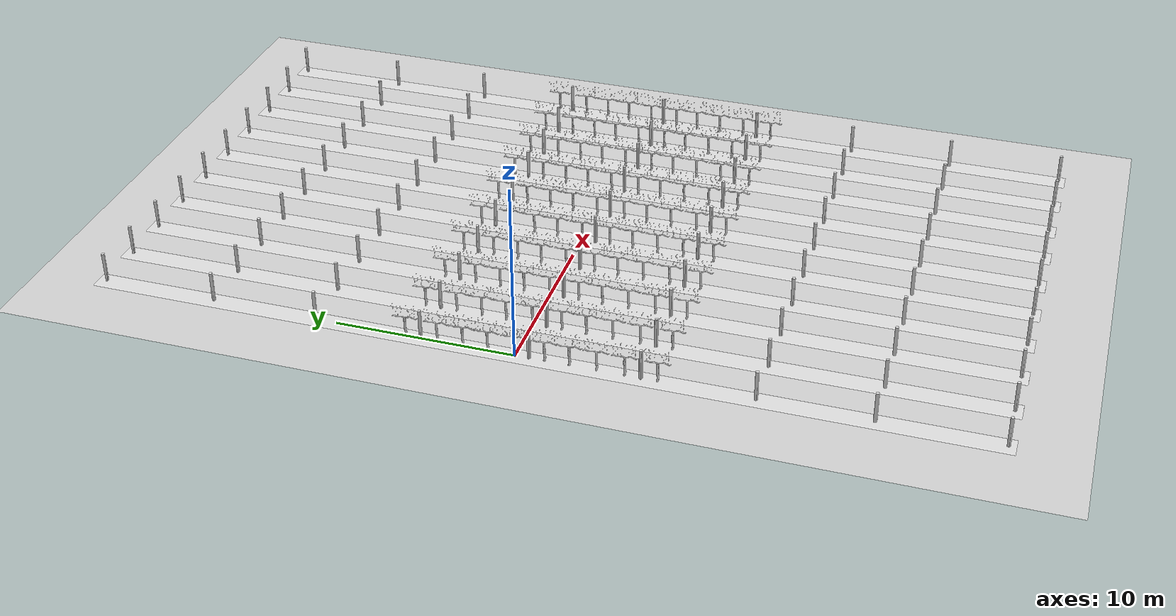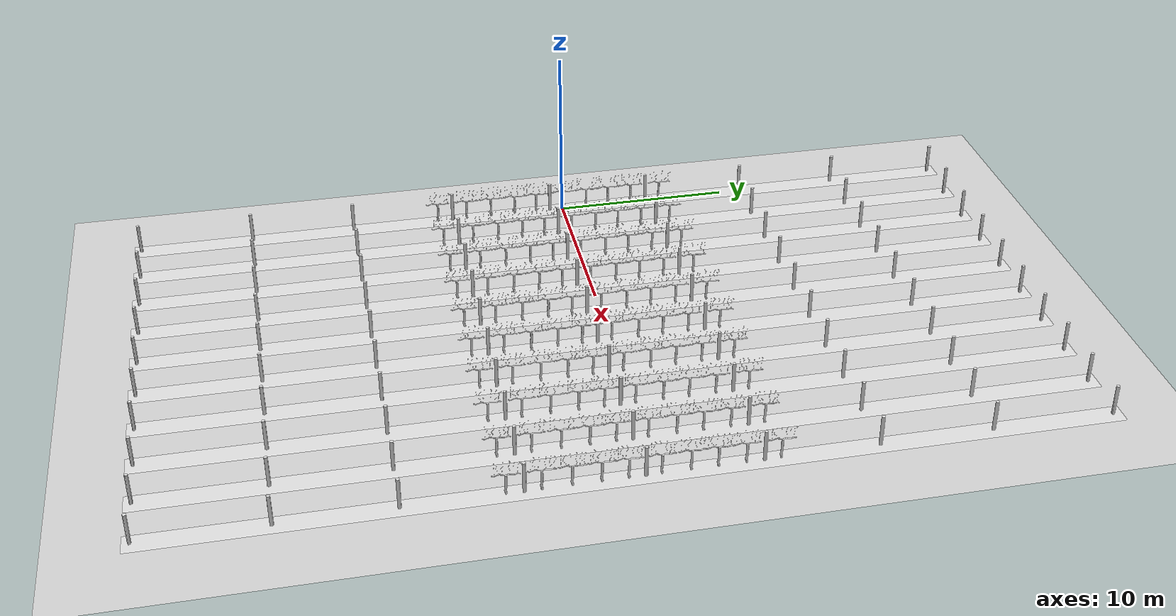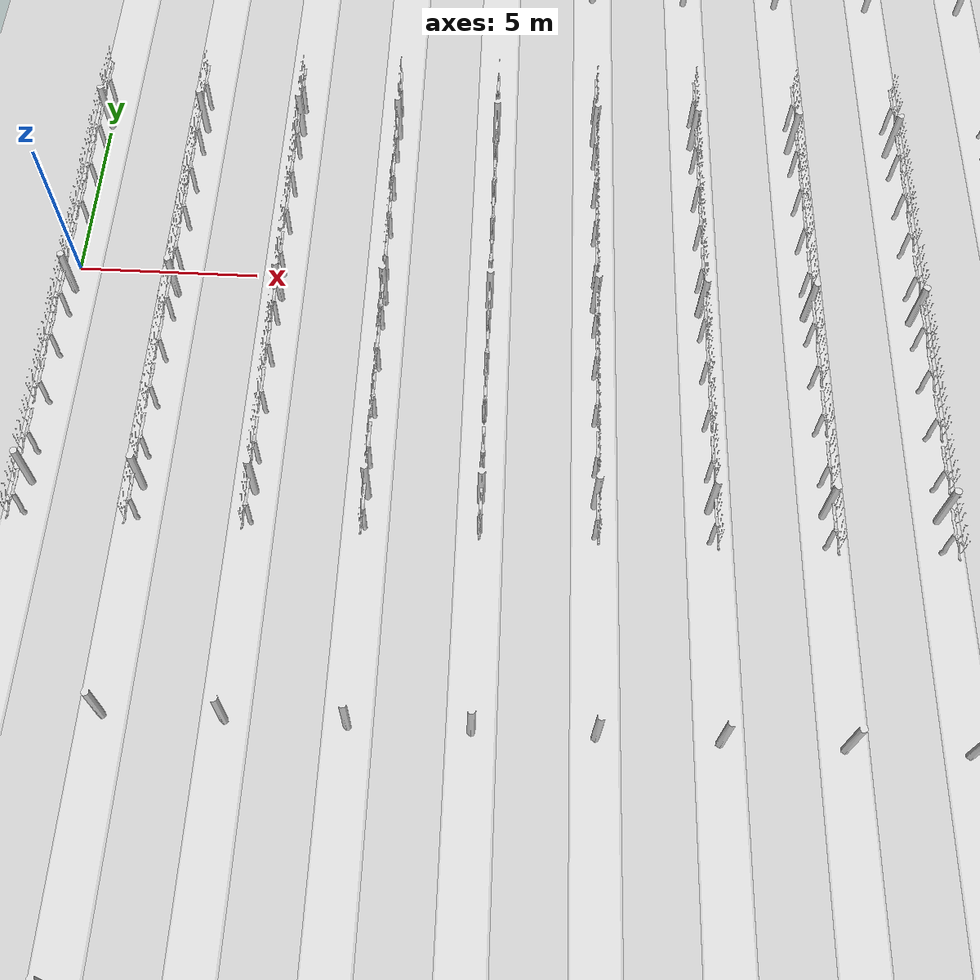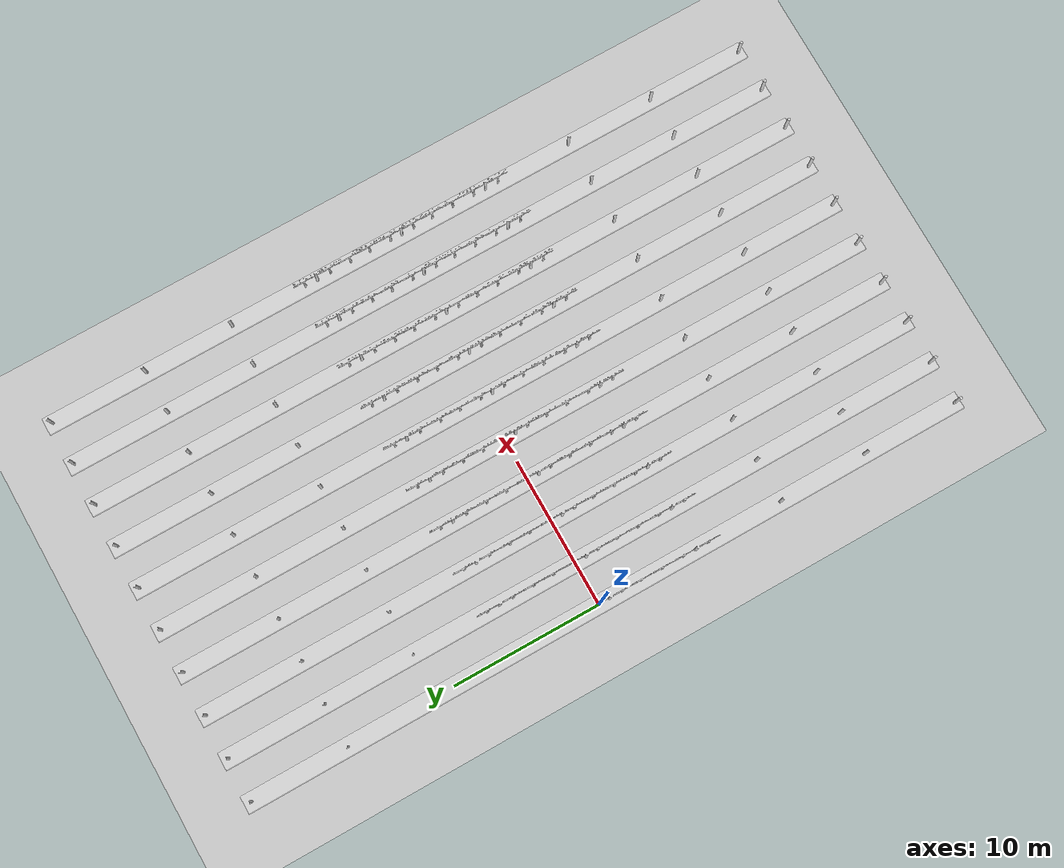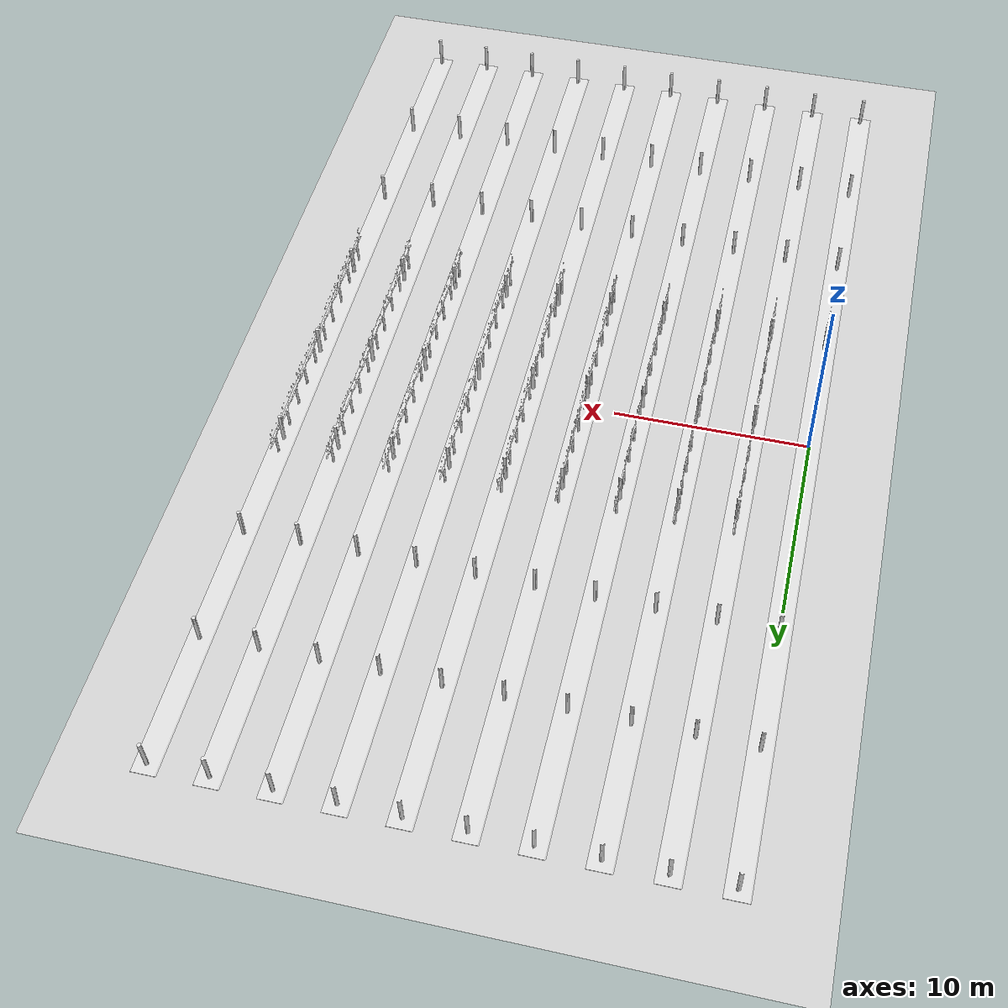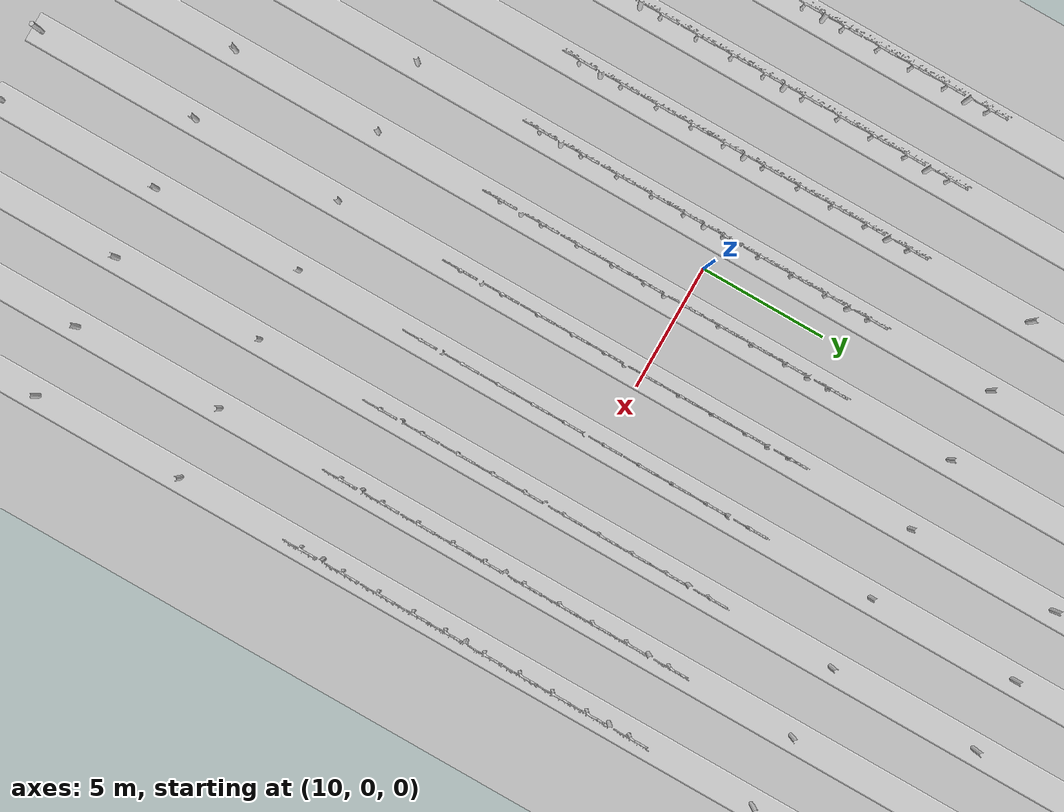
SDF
<sdf version="1.7">
 <world name="agropolis">
  <model name="ground_plane">
   <static>1</static>
   <link name="link">
    <collision name="collision">
     <geometry><plane><normal>0 0 1</normal><size>100 100</size></plane></geometry>
     <surface><friction><ode><mu>100</mu><mu2>50</mu2></ode></friction></surface>
    </collision>
    <visual name="visual">
     <cast_shadows>0</cast_shadows>
     <geometry><plane><normal>0 0 1</normal><size>100 100</size></plane></geometry>
     <material>
      <script><uri>file://media/materials/scripts/gazebo.material</uri><name>Gazebo/Grey</name></script>
     </material>
    </visual>
   </link>
  </model>
  <model name="fila1">
   <static>1</static>
   <link name="link">
    <collision name="collision">
     <geometry><mesh><uri>file://models/pasillo/meshes/pasillo.dae</uri></mesh></geometry>
    </collision>
    <visual name="visual">
     <geometry><mesh><uri>file://models/pasillo/meshes/pasillo.dae</uri></mesh></geometry>
    </visual>
   </link>
   <pose>0.0 -0.72112 0 0 -0 0</pose>
  </model>
  <model name="vinya_1_fila_1">
   <static>1</static>
   <link name="link">
    <collision name="collision">
     <geometry><mesh><uri>file://models/vinya/meshes/vinya.dae</uri></mesh></geometry>
    </collision>
    <visual name="visual">
     <geometry><mesh><uri>file://models/vinya/meshes/vinya.dae</uri></mesh></geometry>
    </visual>
   </link>
   <pose>0.0 -5.9 0.03 0 -0 1.57</pose>
  </model>
  <model name="vinya_2_fila_1">
   <static>1</static>
   <link name="link">
    <collision name="collision">
     <geometry><mesh><uri>file://models/vinya/meshes/vinya.dae</uri></mesh></geometry>
    </collision>
    <visual name="visual">
     <geometry><mesh><uri>file://models/vinya/meshes/vinya.dae</uri></mesh></geometry>
    </visual>
   </link>
   <pose>0.0 -4.40133 0.03 0 -0 1.57</pose>
  </model>
  <model name="vinya_3_fila_1">
   <static>1</static>
   <link name="link">
    <collision name="collision">
     <geometry><mesh><uri>file://models/vinya/meshes/vinya.dae</uri></mesh></geometry>
    </collision>
    <visual name="visual">
     <geometry><mesh><uri>file://models/vinya/meshes/vinya.dae</uri></mesh></geometry>
    </visual>
   </link>
   <pose>0.0 -2.94517 0.03 0 -0 1.57</pose>
  </model>
  <model name="vinya_4_fila_1">
   <static>1</static>
   <link name="link">
    <collision name="collision">
     <geometry><mesh><uri>file://models/vinya/meshes/vinya.dae</uri></mesh></geometry>
    </collision>
    <visual name="visual">
     <geometry><mesh><uri>file://models/vinya/meshes/vinya.dae</uri></mesh></geometry>
    </visual>
   </link>
   <pose>0.0 -1.60177 0.03 0 -0 1.57</pose>
  </model>
  <model name="vinya_5_fila_1">
   <static>1</static>
   <link name="link">
    <collision name="collision">
     <geometry><mesh><uri>file://models/vinya/meshes/vinya.dae</uri></mesh></geometry>
    </collision>
    <visual name="visual">
     <geometry><mesh><uri>file://models/vinya/meshes/vinya.dae</uri></mesh></geometry>
    </visual>
   </link>
   <pose>0.0 -7.64563 0.03 0 -0 1.57</pose>
  </model>
  <model name="vinya_17_fila_1">
   <static>1</static>
   <link name="link">
    <collision name="collision">
     <geometry><mesh><uri>file://models/vinya/meshes/vinya.dae</uri></mesh></geometry>
    </collision>
    <visual name="visual">
     <geometry><mesh><uri>file://models/vinya/meshes/vinya.dae</uri></mesh></geometry>
    </visual>
   </link>
   <pose>0.0 0.038395 0.03 0 -0 1.57</pose>
  </model>
  <model name="vinya_18_fila_1">
   <static>1</static>
   <link name="link">
    <collision name="collision">
     <geometry><mesh><uri>file://models/vinya/meshes/vinya.dae</uri></mesh></geometry>
    </collision>
    <visual name="visual">
     <geometry><mesh><uri>file://models/vinya/meshes/vinya.dae</uri></mesh></geometry>
    </visual>
   </link>
   <pose>0.0 1.51569 0.03 0 -0 1.57</pose>
  </model>
  <model name="vinya_19_fila_1">
   <static>1</static>
   <link name="link">
    <collision name="collision">
     <geometry><mesh><uri>file://models/vinya/meshes/vinya.dae</uri></mesh></geometry>
    </collision>
    <visual name="visual">
     <geometry><mesh><uri>file://models/vinya/meshes/vinya.dae</uri></mesh></geometry>
    </visual>
   </link>
   <pose>0.0 2.8899 0.03 0 -0 1.57</pose>
  </model>
  <model name="vinya_20_fila_1">
   <static>1</static>
   <link name="link">
    <collision name="collision">
     <geometry><mesh><uri>file://models/vinya/meshes/vinya.dae</uri></mesh></geometry>
    </collision>
    <visual name="visual">
     <geometry><mesh><uri>file://models/vinya/meshes/vinya.dae</uri></mesh></geometry>
    </visual>
   </link>
   <pose>0.0 4.31805 0.03 0 -0 1.57</pose>
  </model>
  <model name="vinya_21_fila_1">
   <static>1</static>
   <link name="link">
    <collision name="collision">
     <geometry><mesh><uri>file://models/vinya/meshes/vinya.dae</uri></mesh></geometry>
    </collision>
    <visual name="visual">
     <geometry><mesh><uri>file://models/vinya/meshes/vinya.dae</uri></mesh></geometry>
    </visual>
   </link>
   <pose>0.0 6.09459 0.03 0 -0 1.57</pose>
  </model>
  <model name="fila2">
   <static>1</static>
   <link name="link">
    <collision name="collision">
     <geometry><mesh><uri>file://models/pasillo/meshes/pasillo.dae</uri></mesh></geometry>
    </collision>
    <visual name="visual">
     <geometry><mesh><uri>file://models/pasillo/meshes/pasillo.dae</uri></mesh></geometry>
    </visual>
   </link>
   <pose>2.9 -0.72112 0 0 -0 0</pose>
  </model>
  <model name="vinya_1_fila_2">
   <static>1</static>
   <link name="link">
    <collision name="collision">
     <geometry><mesh><uri>file://models/vinya/meshes/vinya.dae</uri></mesh></geometry>
    </collision>
    <visual name="visual">
     <geometry><mesh><uri>file://models/vinya/meshes/vinya.dae</uri></mesh></geometry>
    </visual>
   </link>
   <pose>2.9 -5.9 0.03 0 -0 1.57</pose>
  </model>
  <model name="vinya_2_fila_2">
   <static>1</static>
   <link name="link">
    <collision name="collision">
     <geometry><mesh><uri>file://models/vinya/meshes/vinya.dae</uri></mesh></geometry>
    </collision>
    <visual name="visual">
     <geometry><mesh><uri>file://models/vinya/meshes/vinya.dae</uri></mesh></geometry>
    </visual>
   </link>
   <pose>2.9 -4.40133 0.03 0 -0 1.57</pose>
  </model>
  <model name="vinya_3_fila_2">
   <static>1</static>
   <link name="link">
    <collision name="collision">
     <geometry><mesh><uri>file://models/vinya/meshes/vinya.dae</uri></mesh></geometry>
    </collision>
    <visual name="visual">
     <geometry><mesh><uri>file://models/vinya/meshes/vinya.dae</uri></mesh></geometry>
    </visual>
   </link>
   <pose>2.9 -2.94517 0.03 0 -0 1.57</pose>
  </model>
  <model name="vinya_4_fila_2">
   <static>1</static>
   <link name="link">
    <collision name="collision">
     <geometry><mesh><uri>file://models/vinya/meshes/vinya.dae</uri></mesh></geometry>
    </collision>
    <visual name="visual">
     <geometry><mesh><uri>file://models/vinya/meshes/vinya.dae</uri></mesh></geometry>
    </visual>
   </link>
   <pose>2.9 -1.60177 0.03 0 -0 1.57</pose>
  </model>
  <model name="vinya_5_fila_2">
   <static>1</static>
   <link name="link">
    <collision name="collision">
     <geometry><mesh><uri>file://models/vinya/meshes/vinya.dae</uri></mesh></geometry>
    </collision>
    <visual name="visual">
     <geometry><mesh><uri>file://models/vinya/meshes/vinya.dae</uri></mesh></geometry>
    </visual>
   </link>
   <pose>2.9 -7.64563 0.03 0 -0 1.57</pose>
  </model>
  <model name="vinya_17_fila_2">
   <static>1</static>
   <link name="link">
    <collision name="collision">
     <geometry><mesh><uri>file://models/vinya/meshes/vinya.dae</uri></mesh></geometry>
    </collision>
    <visual name="visual">
     <geometry><mesh><uri>file://models/vinya/meshes/vinya.dae</uri></mesh></geometry>
    </visual>
   </link>
   <pose>2.9 0.038395 0.03 0 -0 1.57</pose>
  </model>
  <model name="vinya_18_fila_2">
   <static>1</static>
   <link name="link">
    <collision name="collision">
     <geometry><mesh><uri>file://models/vinya/meshes/vinya.dae</uri></mesh></geometry>
    </collision>
    <visual name="visual">
     <geometry><mesh><uri>file://models/vinya/meshes/vinya.dae</uri></mesh></geometry>
    </visual>
   </link>
   <pose>2.9 1.51569 0.03 0 -0 1.57</pose>
  </model>
  <model name="vinya_19_fila_2">
   <static>1</static>
   <link name="link">
    <collision name="collision">
     <geometry><mesh><uri>file://models/vinya/meshes/vinya.dae</uri></mesh></geometry>
    </collision>
    <visual name="visual">
     <geometry><mesh><uri>file://models/vinya/meshes/vinya.dae</uri></mesh></geometry>
    </visual>
   </link>
   <pose>2.9 2.8899 0.03 0 -0 1.57</pose>
  </model>
  <model name="vinya_20_fila_2">
   <static>1</static>
   <link name="link">
    <collision name="collision">
     <geometry><mesh><uri>file://models/vinya/meshes/vinya.dae</uri></mesh></geometry>
    </collision>
    <visual name="visual">
     <geometry><mesh><uri>file://models/vinya/meshes/vinya.dae</uri></mesh></geometry>
    </visual>
   </link>
   <pose>2.9 4.31805 0.03 0 -0 1.57</pose>
  </model>
  <model name="vinya_21_fila_2">
   <static>1</static>
   <link name="link">
    <collision name="collision">
     <geometry><mesh><uri>file://models/vinya/meshes/vinya.dae</uri></mesh></geometry>
    </collision>
    <visual name="visual">
     <geometry><mesh><uri>file://models/vinya/meshes/vinya.dae</uri></mesh></geometry>
    </visual>
   </link>
   <pose>2.9 6.09459 0.03 0 -0 1.57</pose>
  </model>
  <model name="fila3">
   <static>1</static>
   <link name="link">
    <collision name="collision">
     <geometry><mesh><uri>file://models/pasillo/meshes/pasillo.dae</uri></mesh></geometry>
    </collision>
    <visual name="visual">
     <geometry><mesh><uri>file://models/pasillo/meshes/pasillo.dae</uri></mesh></geometry>
    </visual>
   </link>
   <pose>5.8 -0.72112 0 0 -0 0</pose>
  </model>
  <model name="vinya_1_fila_3">
   <static>1</static>
   <link name="link">
    <collision name="collision">
     <geometry><mesh><uri>file://models/vinya/meshes/vinya.dae</uri></mesh></geometry>
    </collision>
    <visual name="visual">
     <geometry><mesh><uri>file://models/vinya/meshes/vinya.dae</uri></mesh></geometry>
    </visual>
   </link>
   <pose>5.8 -5.9 0.03 0 -0 1.57</pose>
  </model>
  <model name="vinya_2_fila_3">
   <static>1</static>
   <link name="link">
    <collision name="collision">
     <geometry><mesh><uri>file://models/vinya/meshes/vinya.dae</uri></mesh></geometry>
    </collision>
    <visual name="visual">
     <geometry><mesh><uri>file://models/vinya/meshes/vinya.dae</uri></mesh></geometry>
    </visual>
   </link>
   <pose>5.8 -4.40133 0.03 0 -0 1.57</pose>
  </model>
  <model name="vinya_3_fila_3">
   <static>1</static>
   <link name="link">
    <collision name="collision">
     <geometry><mesh><uri>file://models/vinya/meshes/vinya.dae</uri></mesh></geometry>
    </collision>
    <visual name="visual">
     <geometry><mesh><uri>file://models/vinya/meshes/vinya.dae</uri></mesh></geometry>
    </visual>
   </link>
   <pose>5.8 -2.94517 0.03 0 -0 1.57</pose>
  </model>
  <model name="vinya_4_fila_3">
   <static>1</static>
   <link name="link">
    <collision name="collision">
     <geometry><mesh><uri>file://models/vinya/meshes/vinya.dae</uri></mesh></geometry>
    </collision>
    <visual name="visual">
     <geometry><mesh><uri>file://models/vinya/meshes/vinya.dae</uri></mesh></geometry>
    </visual>
   </link>
   <pose>5.8 -1.60177 0.03 0 -0 1.57</pose>
  </model>
  <model name="vinya_5_fila_3">
   <static>1</static>
   <link name="link">
    <collision name="collision">
     <geometry><mesh><uri>file://models/vinya/meshes/vinya.dae</uri></mesh></geometry>
    </collision>
    <visual name="visual">
     <geometry><mesh><uri>file://models/vinya/meshes/vinya.dae</uri></mesh></geometry>
    </visual>
   </link>
   <pose>5.8 -7.64563 0.03 0 -0 1.57</pose>
  </model>
  <model name="vinya_17_fila_3">
   <static>1</static>
   <link name="link">
    <collision name="collision">
     <geometry><mesh><uri>file://models/vinya/meshes/vinya.dae</uri></mesh></geometry>
    </collision>
    <visual name="visual">
     <geometry><mesh><uri>file://models/vinya/meshes/vinya.dae</uri></mesh></geometry>
    </visual>
   </link>
   <pose>5.8 0.038395 0.03 0 -0 1.57</pose>
  </model>
  <model name="vinya_18_fila_3">
   <static>1</static>
   <link name="link">
    <collision name="collision">
     <geometry><mesh><uri>file://models/vinya/meshes/vinya.dae</uri></mesh></geometry>
    </collision>
    <visual name="visual">
     <geometry><mesh><uri>file://models/vinya/meshes/vinya.dae</uri></mesh></geometry>
    </visual>
   </link>
   <pose>5.8 1.51569 0.03 0 -0 1.57</pose>
  </model>
  <model name="vinya_19_fila_3">
   <static>1</static>
   <link name="link">
    <collision name="collision">
     <geometry><mesh><uri>file://models/vinya/meshes/vinya.dae</uri></mesh></geometry>
    </collision>
    <visual name="visual">
     <geometry><mesh><uri>file://models/vinya/meshes/vinya.dae</uri></mesh></geometry>
    </visual>
   </link>
   <pose>5.8 2.8899 0.03 0 -0 1.57</pose>
  </model>
  <model name="vinya_20_fila_3">
   <static>1</static>
   <link name="link">
    <collision name="collision">
     <geometry><mesh><uri>file://models/vinya/meshes/vinya.dae</uri></mesh></geometry>
    </collision>
    <visual name="visual">
     <geometry><mesh><uri>file://models/vinya/meshes/vinya.dae</uri></mesh></geometry>
    </visual>
   </link>
   <pose>5.8 4.31805 0.03 0 -0 1.57</pose>
  </model>
  <model name="vinya_21_fila_3">
   <static>1</static>
   <link name="link">
    <collision name="collision">
     <geometry><mesh><uri>file://models/vinya/meshes/vinya.dae</uri></mesh></geometry>
    </collision>
    <visual name="visual">
     <geometry><mesh><uri>file://models/vinya/meshes/vinya.dae</uri></mesh></geometry>
    </visual>
   </link>
   <pose>5.8 6.09459 0.03 0 -0 1.57</pose>
  </model>
  <model name="fila4">
   <static>1</static>
   <link name="link">
    <collision name="collision">
     <geometry><mesh><uri>file://models/pasillo/meshes/pasillo.dae</uri></mesh></geometry>
    </collision>
    <visual name="visual">
     <geometry><mesh><uri>file://models/pasillo/meshes/pasillo.dae</uri></mesh></geometry>
    </visual>
   </link>
   <pose>8.7 -0.72112 0 0 -0 0</pose>
  </model>
  <model name="vinya_1_fila_4">
   <static>1</static>
   <link name="link">
    <collision name="collision">
     <geometry><mesh><uri>file://models/vinya/meshes/vinya.dae</uri></mesh></geometry>
    </collision>
    <visual name="visual">
     <geometry><mesh><uri>file://models/vinya/meshes/vinya.dae</uri></mesh></geometry>
    </visual>
   </link>
   <pose>8.7 -5.9 0.03 0 -0 1.57</pose>
  </model>
  <model name="vinya_2_fila_4">
   <static>1</static>
   <link name="link">
    <collision name="collision">
     <geometry><mesh><uri>file://models/vinya/meshes/vinya.dae</uri></mesh></geometry>
    </collision>
    <visual name="visual">
     <geometry><mesh><uri>file://models/vinya/meshes/vinya.dae</uri></mesh></geometry>
    </visual>
   </link>
   <pose>8.7 -4.40133 0.03 0 -0 1.57</pose>
  </model>
  <model name="vinya_3_fila_4">
   <static>1</static>
   <link name="link">
    <collision name="collision">
     <geometry><mesh><uri>file://models/vinya/meshes/vinya.dae</uri></mesh></geometry>
    </collision>
    <visual name="visual">
     <geometry><mesh><uri>file://models/vinya/meshes/vinya.dae</uri></mesh></geometry>
    </visual>
   </link>
   <pose>8.7 -2.94517 0.03 0 -0 1.57</pose>
  </model>
  <model name="vinya_4_fila_4">
   <static>1</static>
   <link name="link">
    <collision name="collision">
     <geometry><mesh><uri>file://models/vinya/meshes/vinya.dae</uri></mesh></geometry>
    </collision>
    <visual name="visual">
     <geometry><mesh><uri>file://models/vinya/meshes/vinya.dae</uri></mesh></geometry>
    </visual>
   </link>
   <pose>8.7 -1.60177 0.03 0 -0 1.57</pose>
  </model>
  <model name="vinya_5_fila_4">
   <static>1</static>
   <link name="link">
    <collision name="collision">
     <geometry><mesh><uri>file://models/vinya/meshes/vinya.dae</uri></mesh></geometry>
    </collision>
    <visual name="visual">
     <geometry><mesh><uri>file://models/vinya/meshes/vinya.dae</uri></mesh></geometry>
    </visual>
   </link>
   <pose>8.7 -7.64563 0.03 0 -0 1.57</pose>
  </model>
  <model name="vinya_17_fila_4">
   <static>1</static>
   <link name="link">
    <collision name="collision">
     <geometry><mesh><uri>file://models/vinya/meshes/vinya.dae</uri></mesh></geometry>
    </collision>
    <visual name="visual">
     <geometry><mesh><uri>file://models/vinya/meshes/vinya.dae</uri></mesh></geometry>
    </visual>
   </link>
   <pose>8.7 0.038395 0.03 0 -0 1.57</pose>
  </model>
  <model name="vinya_18_fila_4">
   <static>1</static>
   <link name="link">
    <collision name="collision">
     <geometry><mesh><uri>file://models/vinya/meshes/vinya.dae</uri></mesh></geometry>
    </collision>
    <visual name="visual">
     <geometry><mesh><uri>file://models/vinya/meshes/vinya.dae</uri></mesh></geometry>
    </visual>
   </link>
   <pose>8.7 1.51569 0.03 0 -0 1.57</pose>
  </model>
  <model name="vinya_19_fila_4">
   <static>1</static>
   <link name="link">
    <collision name="collision">
     <geometry><mesh><uri>file://models/vinya/meshes/vinya.dae</uri></mesh></geometry>
    </collision>
    <visual name="visual">
     <geometry><mesh><uri>file://models/vinya/meshes/vinya.dae</uri></mesh></geometry>
    </visual>
   </link>
   <pose>8.7 2.8899 0.03 0 -0 1.57</pose>
  </model>
  <model name="vinya_20_fila_4">
   <static>1</static>
   <link name="link">
    <collision name="collision">
     <geometry><mesh><uri>file://models/vinya/meshes/vinya.dae</uri></mesh></geometry>
    </collision>
    <visual name="visual">
     <geometry><mesh><uri>file://models/vinya/meshes/vinya.dae</uri></mesh></geometry>
    </visual>
   </link>
   <pose>8.7 4.31805 0.03 0 -0 1.57</pose>
  </model>
  <model name="vinya_21_fila_4">
   <static>1</static>
   <link name="link">
    <collision name="collision">
     <geometry><mesh><uri>file://models/vinya/meshes/vinya.dae</uri></mesh></geometry>
    </collision>
    <visual name="visual">
     <geometry><mesh><uri>file://models/vinya/meshes/vinya.dae</uri></mesh></geometry>
    </visual>
   </link>
   <pose>8.7 6.09459 0.03 0 -0 1.57</pose>
  </model>
  <model name="fila5">
   <static>1</static>
   <link name="link">
    <collision name="collision">
     <geometry><mesh><uri>file://models/pasillo/meshes/pasillo.dae</uri></mesh></geometry>
    </collision>
    <visual name="visual">
     <geometry><mesh><uri>file://models/pasillo/meshes/pasillo.dae</uri></mesh></geometry>
    </visual>
   </link>
   <pose>11.6 -0.72112 0 0 -0 0</pose>
  </model>
  <model name="vinya_1_fila_5">
   <static>1</static>
   <link name="link">
    <collision name="collision">
     <geometry><mesh><uri>file://models/vinya/meshes/vinya.dae</uri></mesh></geometry>
    </collision>
    <visual name="visual">
     <geometry><mesh><uri>file://models/vinya/meshes/vinya.dae</uri></mesh></geometry>
    </visual>
   </link>
   <pose>11.6 -5.9 0.03 0 -0 1.57</pose>
  </model>
  <model name="vinya_2_fila_5">
   <static>1</static>
   <link name="link">
    <collision name="collision">
     <geometry><mesh><uri>file://models/vinya/meshes/vinya.dae</uri></mesh></geometry>
    </collision>
    <visual name="visual">
     <geometry><mesh><uri>file://models/vinya/meshes/vinya.dae</uri></mesh></geometry>
    </visual>
   </link>
   <pose>11.6 -4.40133 0.03 0 -0 1.57</pose>
  </model>
  <model name="vinya_3_fila_5">
   <static>1</static>
   <link name="link">
    <collision name="collision">
     <geometry><mesh><uri>file://models/vinya/meshes/vinya.dae</uri></mesh></geometry>
    </collision>
    <visual name="visual">
     <geometry><mesh><uri>file://models/vinya/meshes/vinya.dae</uri></mesh></geometry>
    </visual>
   </link>
   <pose>11.6 -2.94517 0.03 0 -0 1.57</pose>
  </model>
  <model name="vinya_4_fila_5">
   <static>1</static>
   <link name="link">
    <collision name="collision">
     <geometry><mesh><uri>file://models/vinya/meshes/vinya.dae</uri></mesh></geometry>
    </collision>
    <visual name="visual">
     <geometry><mesh><uri>file://models/vinya/meshes/vinya.dae</uri></mesh></geometry>
    </visual>
   </link>
   <pose>11.6 -1.60177 0.03 0 -0 1.57</pose>
  </model>
  <model name="vinya_5_fila_5">
   <static>1</static>
   <link name="link">
    <collision name="collision">
     <geometry><mesh><uri>file://models/vinya/meshes/vinya.dae</uri></mesh></geometry>
    </collision>
    <visual name="visual">
     <geometry><mesh><uri>file://models/vinya/meshes/vinya.dae</uri></mesh></geometry>
    </visual>
   </link>
   <pose>11.6 -7.64563 0.03 0 -0 1.57</pose>
  </model>
  <model name="vinya_17_fila_5">
   <static>1</static>
   <link name="link">
    <collision name="collision">
     <geometry><mesh><uri>file://models/vinya/meshes/vinya.dae</uri></mesh></geometry>
    </collision>
    <visual name="visual">
     <geometry><mesh><uri>file://models/vinya/meshes/vinya.dae</uri></mesh></geometry>
    </visual>
   </link>
   <pose>11.6 0.038395 0.03 0 -0 1.57</pose>
  </model>
  <model name="vinya_18_fila_5">
   <static>1</static>
   <link name="link">
    <collision name="collision">
     <geometry><mesh><uri>file://models/vinya/meshes/vinya.dae</uri></mesh></geometry>
    </collision>
    <visual name="visual">
     <geometry><mesh><uri>file://models/vinya/meshes/vinya.dae</uri></mesh></geometry>
    </visual>
   </link>
   <pose>11.6 1.51569 0.03 0 -0 1.57</pose>
  </model>
  <model name="vinya_19_fila_5">
   <static>1</static>
   <link name="link">
    <collision name="collision">
     <geometry><mesh><uri>file://models/vinya/meshes/vinya.dae</uri></mesh></geometry>
    </collision>
    <visual name="visual">
     <geometry><mesh><uri>file://models/vinya/meshes/vinya.dae</uri></mesh></geometry>
    </visual>
   </link>
   <pose>11.6 2.8899 0.03 0 -0 1.57</pose>
  </model>
  <model name="vinya_20_fila_5">
   <static>1</static>
   <link name="link">
    <collision name="collision">
     <geometry><mesh><uri>file://models/vinya/meshes/vinya.dae</uri></mesh></geometry>
    </collision>
    <visual name="visual">
     <geometry><mesh><uri>file://models/vinya/meshes/vinya.dae</uri></mesh></geometry>
    </visual>
   </link>
   <pose>11.6 4.31805 0.03 0 -0 1.57</pose>
  </model>
  <model name="vinya_21_fila_5">
   <static>1</static>
   <link name="link">
    <collision name="collision">
     <geometry><mesh><uri>file://models/vinya/meshes/vinya.dae</uri></mesh></geometry>
    </collision>
    <visual name="visual">
     <geometry><mesh><uri>file://models/vinya/meshes/vinya.dae</uri></mesh></geometry>
    </visual>
   </link>
   <pose>11.6 6.09459 0.03 0 -0 1.57</pose>
  </model>
  <model name="fila6">
   <static>1</static>
   <link name="link">
    <collision name="collision">
     <geometry><mesh><uri>file://models/pasillo/meshes/pasillo.dae</uri></mesh></geometry>
    </collision>
    <visual name="visual">
     <geometry><mesh><uri>file://models/pasillo/meshes/pasillo.dae</uri></mesh></geometry>
    </visual>
   </link>
   <pose>14.5 -0.72112 0 0 -0 0</pose>
  </model>
  <model name="vinya_1_fila_6">
   <static>1</static>
   <link name="link">
    <collision name="collision">
     <geometry><mesh><uri>file://models/vinya/meshes/vinya.dae</uri></mesh></geometry>
    </collision>
    <visual name="visual">
     <geometry><mesh><uri>file://models/vinya/meshes/vinya.dae</uri></mesh></geometry>
    </visual>
   </link>
   <pose>14.5 -5.9 0.03 0 -0 1.57</pose>
  </model>
  <model name="vinya_2_fila_6">
   <static>1</static>
   <link name="link">
    <collision name="collision">
     <geometry><mesh><uri>file://models/vinya/meshes/vinya.dae</uri></mesh></geometry>
    </collision>
    <visual name="visual">
     <geometry><mesh><uri>file://models/vinya/meshes/vinya.dae</uri></mesh></geometry>
    </visual>
   </link>
   <pose>14.5 -4.40133 0.03 0 -0 1.57</pose>
  </model>
  <model name="vinya_3_fila_6">
   <static>1</static>
   <link name="link">
    <collision name="collision">
     <geometry><mesh><uri>file://models/vinya/meshes/vinya.dae</uri></mesh></geometry>
    </collision>
    <visual name="visual">
     <geometry><mesh><uri>file://models/vinya/meshes/vinya.dae</uri></mesh></geometry>
    </visual>
   </link>
   <pose>14.5 -2.94517 0.03 0 -0 1.57</pose>
  </model>
  <model name="vinya_4_fila_6">
   <static>1</static>
   <link name="link">
    <collision name="collision">
     <geometry><mesh><uri>file://models/vinya/meshes/vinya.dae</uri></mesh></geometry>
    </collision>
    <visual name="visual">
     <geometry><mesh><uri>file://models/vinya/meshes/vinya.dae</uri></mesh></geometry>
    </visual>
   </link>
   <pose>14.5 -1.60177 0.03 0 -0 1.57</pose>
  </model>
  <model name="vinya_5_fila_6">
   <static>1</static>
   <link name="link">
    <collision name="collision">
     <geometry><mesh><uri>file://models/vinya/meshes/vinya.dae</uri></mesh></geometry>
    </collision>
    <visual name="visual">
     <geometry><mesh><uri>file://models/vinya/meshes/vinya.dae</uri></mesh></geometry>
    </visual>
   </link>
   <pose>14.5 -7.64563 0.03 0 -0 1.57</pose>
  </model>
  <model name="vinya_17_fila_6">
   <static>1</static>
   <link name="link">
    <collision name="collision">
     <geometry><mesh><uri>file://models/vinya/meshes/vinya.dae</uri></mesh></geometry>
    </collision>
    <visual name="visual">
     <geometry><mesh><uri>file://models/vinya/meshes/vinya.dae</uri></mesh></geometry>
    </visual>
   </link>
   <pose>14.5 0.038395 0.03 0 -0 1.57</pose>
  </model>
  <model name="vinya_18_fila_6">
   <static>1</static>
   <link name="link">
    <collision name="collision">
     <geometry><mesh><uri>file://models/vinya/meshes/vinya.dae</uri></mesh></geometry>
    </collision>
    <visual name="visual">
     <geometry><mesh><uri>file://models/vinya/meshes/vinya.dae</uri></mesh></geometry>
    </visual>
   </link>
   <pose>14.5 1.51569 0.03 0 -0 1.57</pose>
  </model>
  <model name="vinya_19_fila_6">
   <static>1</static>
   <link name="link">
    <collision name="collision">
     <geometry><mesh><uri>file://models/vinya/meshes/vinya.dae</uri></mesh></geometry>
    </collision>
    <visual name="visual">
     <geometry><mesh><uri>file://models/vinya/meshes/vinya.dae</uri></mesh></geometry>
    </visual>
   </link>
   <pose>14.5 2.8899 0.03 0 -0 1.57</pose>
  </model>
  <model name="vinya_20_fila_6">
   <static>1</static>
   <link name="link">
    <collision name="collision">
     <geometry><mesh><uri>file://models/vinya/meshes/vinya.dae</uri></mesh></geometry>
    </collision>
    <visual name="visual">
     <geometry><mesh><uri>file://models/vinya/meshes/vinya.dae</uri></mesh></geometry>
    </visual>
   </link>
   <pose>14.5 4.31805 0.03 0 -0 1.57</pose>
  </model>
  <model name="vinya_21_fila_6">
   <static>1</static>
   <link name="link">
    <collision name="collision">
     <geometry><mesh><uri>file://models/vinya/meshes/vinya.dae</uri></mesh></geometry>
    </collision>
    <visual name="visual">
     <geometry><mesh><uri>file://models/vinya/meshes/vinya.dae</uri></mesh></geometry>
    </visual>
   </link>
   <pose>14.5 6.09459 0.03 0 -0 1.57</pose>
  </model>
  <model name="fila7">
   <static>1</static>
   <link name="link">
    <collision name="collision">
     <geometry><mesh><uri>file://models/pasillo/meshes/pasillo.dae</uri></mesh></geometry>
    </collision>
    <visual name="visual">
     <geometry><mesh><uri>file://models/pasillo/meshes/pasillo.dae</uri></mesh></geometry>
    </visual>
   </link>
   <pose>17.4 -0.72112 0 0 -0 0</pose>
  </model>
  <model name="vinya_1_fila_7">
   <static>1</static>
   <link name="link">
    <collision name="collision">
     <geometry><mesh><uri>file://models/vinya/meshes/vinya.dae</uri></mesh></geometry>
    </collision>
    <visual name="visual">
     <geometry><mesh><uri>file://models/vinya/meshes/vinya.dae</uri></mesh></geometry>
    </visual>
   </link>
   <pose>17.4 -5.9 0.03 0 -0 1.57</pose>
  </model>
  <model name="vinya_2_fila_7">
   <static>1</static>
   <link name="link">
    <collision name="collision">
     <geometry><mesh><uri>file://models/vinya/meshes/vinya.dae</uri></mesh></geometry>
    </collision>
    <visual name="visual">
     <geometry><mesh><uri>file://models/vinya/meshes/vinya.dae</uri></mesh></geometry>
    </visual>
   </link>
   <pose>17.4 -4.40133 0.03 0 -0 1.57</pose>
  </model>
  <model name="vinya_3_fila_7">
   <static>1</static>
   <link name="link">
    <collision name="collision">
     <geometry><mesh><uri>file://models/vinya/meshes/vinya.dae</uri></mesh></geometry>
    </collision>
    <visual name="visual">
     <geometry><mesh><uri>file://models/vinya/meshes/vinya.dae</uri></mesh></geometry>
    </visual>
   </link>
   <pose>17.4 -2.94517 0.03 0 -0 1.57</pose>
  </model>
  <model name="vinya_4_fila_7">
   <static>1</static>
   <link name="link">
    <collision name="collision">
     <geometry><mesh><uri>file://models/vinya/meshes/vinya.dae</uri></mesh></geometry>
    </collision>
    <visual name="visual">
     <geometry><mesh><uri>file://models/vinya/meshes/vinya.dae</uri></mesh></geometry>
    </visual>
   </link>
   <pose>17.4 -1.60177 0.03 0 -0 1.57</pose>
  </model>
  <model name="vinya_5_fila_7">
   <static>1</static>
   <link name="link">
    <collision name="collision">
     <geometry><mesh><uri>file://models/vinya/meshes/vinya.dae</uri></mesh></geometry>
    </collision>
    <visual name="visual">
     <geometry><mesh><uri>file://models/vinya/meshes/vinya.dae</uri></mesh></geometry>
    </visual>
   </link>
   <pose>17.4 -7.64563 0.03 0 -0 1.57</pose>
  </model>
  <model name="vinya_17_fila_7">
   <static>1</static>
   <link name="link">
    <collision name="collision">
     <geometry><mesh><uri>file://models/vinya/meshes/vinya.dae</uri></mesh></geometry>
    </collision>
    <visual name="visual">
     <geometry><mesh><uri>file://models/vinya/meshes/vinya.dae</uri></mesh></geometry>
    </visual>
   </link>
   <pose>17.4 0.038395 0.03 0 -0 1.57</pose>
  </model>
  <model name="vinya_18_fila_7">
   <static>1</static>
   <link name="link">
    <collision name="collision">
     <geometry><mesh><uri>file://models/vinya/meshes/vinya.dae</uri></mesh></geometry>
    </collision>
    <visual name="visual">
     <geometry><mesh><uri>file://models/vinya/meshes/vinya.dae</uri></mesh></geometry>
    </visual>
   </link>
   <pose>17.4 1.51569 0.03 0 -0 1.57</pose>
  </model>
  <model name="vinya_19_fila_7">
   <static>1</static>
   <link name="link">
    <collision name="collision">
     <geometry><mesh><uri>file://models/vinya/meshes/vinya.dae</uri></mesh></geometry>
    </collision>
    <visual name="visual">
     <geometry><mesh><uri>file://models/vinya/meshes/vinya.dae</uri></mesh></geometry>
    </visual>
   </link>
   <pose>17.4 2.8899 0.03 0 -0 1.57</pose>
  </model>
  <model name="vinya_20_fila_7">
   <static>1</static>
   <link name="link">
    <collision name="collision">
     <geometry><mesh><uri>file://models/vinya/meshes/vinya.dae</uri></mesh></geometry>
    </collision>
    <visual name="visual">
     <geometry><mesh><uri>file://models/vinya/meshes/vinya.dae</uri></mesh></geometry>
    </visual>
   </link>
   <pose>17.4 4.31805 0.03 0 -0 1.57</pose>
  </model>
  <model name="vinya_21_fila_7">
   <static>1</static>
   <link name="link">
    <collision name="collision">
     <geometry><mesh><uri>file://models/vinya/meshes/vinya.dae</uri></mesh></geometry>
    </collision>
    <visual name="visual">
     <geometry><mesh><uri>file://models/vinya/meshes/vinya.dae</uri></mesh></geometry>
    </visual>
   </link>
   <pose>17.4 6.09459 0.03 0 -0 1.57</pose>
  </model>
  <model name="fila8">
   <static>1</static>
   <link name="link">
    <collision name="collision">
     <geometry><mesh><uri>file://models/pasillo/meshes/pasillo.dae</uri></mesh></geometry>
    </collision>
    <visual name="visual">
     <geometry><mesh><uri>file://models/pasillo/meshes/pasillo.dae</uri></mesh></geometry>
    </visual>
   </link>
   <pose>20.3 -0.72112 0 0 -0 0</pose>
  </model>
  <model name="vinya_1_fila_8">
   <static>1</static>
   <link name="link">
    <collision name="collision">
     <geometry><mesh><uri>file://models/vinya/meshes/vinya.dae</uri></mesh></geometry>
    </collision>
    <visual name="visual">
     <geometry><mesh><uri>file://models/vinya/meshes/vinya.dae</uri></mesh></geometry>
    </visual>
   </link>
   <pose>20.3 -5.9 0.03 0 -0 1.57</pose>
  </model>
  <model name="vinya_2_fila_8">
   <static>1</static>
   <link name="link">
    <collision name="collision">
     <geometry><mesh><uri>file://models/vinya/meshes/vinya.dae</uri></mesh></geometry>
    </collision>
    <visual name="visual">
     <geometry><mesh><uri>file://models/vinya/meshes/vinya.dae</uri></mesh></geometry>
    </visual>
   </link>
   <pose>20.3 -4.40133 0.03 0 -0 1.57</pose>
  </model>
  <model name="vinya_3_fila_8">
   <static>1</static>
   <link name="link">
    <collision name="collision">
     <geometry><mesh><uri>file://models/vinya/meshes/vinya.dae</uri></mesh></geometry>
    </collision>
    <visual name="visual">
     <geometry><mesh><uri>file://models/vinya/meshes/vinya.dae</uri></mesh></geometry>
    </visual>
   </link>
   <pose>20.3 -2.94517 0.03 0 -0 1.57</pose>
  </model>
  <model name="vinya_4_fila_8">
   <static>1</static>
   <link name="link">
    <collision name="collision">
     <geometry><mesh><uri>file://models/vinya/meshes/vinya.dae</uri></mesh></geometry>
    </collision>
    <visual name="visual">
     <geometry><mesh><uri>file://models/vinya/meshes/vinya.dae</uri></mesh></geometry>
    </visual>
   </link>
   <pose>20.3 -1.60177 0.03 0 -0 1.57</pose>
  </model>
  <model name="vinya_5_fila_8">
   <static>1</static>
   <link name="link">
    <collision name="collision">
     <geometry><mesh><uri>file://models/vinya/meshes/vinya.dae</uri></mesh></geometry>
    </collision>
    <visual name="visual">
     <geometry><mesh><uri>file://models/vinya/meshes/vinya.dae</uri></mesh></geometry>
    </visual>
   </link>
   <pose>20.3 -7.64563 0.03 0 -0 1.57</pose>
  </model>
  <model name="vinya_17_fila_8">
   <static>1</static>
   <link name="link">
    <collision name="collision">
     <geometry><mesh><uri>file://models/vinya/meshes/vinya.dae</uri></mesh></geometry>
    </collision>
    <visual name="visual">
     <geometry><mesh><uri>file://models/vinya/meshes/vinya.dae</uri></mesh></geometry>
    </visual>
   </link>
   <pose>20.3 0.038395 0.03 0 -0 1.57</pose>
  </model>
  <model name="vinya_18_fila_8">
   <static>1</static>
   <link name="link">
    <collision name="collision">
     <geometry><mesh><uri>file://models/vinya/meshes/vinya.dae</uri></mesh></geometry>
    </collision>
    <visual name="visual">
     <geometry><mesh><uri>file://models/vinya/meshes/vinya.dae</uri></mesh></geometry>
    </visual>
   </link>
   <pose>20.3 1.51569 0.03 0 -0 1.57</pose>
  </model>
  <model name="vinya_19_fila_8">
   <static>1</static>
   <link name="link">
    <collision name="collision">
     <geometry><mesh><uri>file://models/vinya/meshes/vinya.dae</uri></mesh></geometry>
    </collision>
    <visual name="visual">
     <geometry><mesh><uri>file://models/vinya/meshes/vinya.dae</uri></mesh></geometry>
    </visual>
   </link>
   <pose>20.3 2.8899 0.03 0 -0 1.57</pose>
  </model>
  <model name="vinya_20_fila_8">
   <static>1</static>
   <link name="link">
    <collision name="collision">
     <geometry><mesh><uri>file://models/vinya/meshes/vinya.dae</uri></mesh></geometry>
    </collision>
    <visual name="visual">
     <geometry><mesh><uri>file://models/vinya/meshes/vinya.dae</uri></mesh></geometry>
    </visual>
   </link>
   <pose>20.3 4.31805 0.03 0 -0 1.57</pose>
  </model>
  <model name="vinya_21_fila_8">
   <static>1</static>
   <link name="link">
    <collision name="collision">
     <geometry><mesh><uri>file://models/vinya/meshes/vinya.dae</uri></mesh></geometry>
    </collision>
    <visual name="visual">
     <geometry><mesh><uri>file://models/vinya/meshes/vinya.dae</uri></mesh></geometry>
    </visual>
   </link>
   <pose>20.3 6.09459 0.03 0 -0 1.57</pose>
  </model>
  <model name="fila9">
   <static>1</static>
   <link name="link">
    <collision name="collision">
     <geometry><mesh><uri>file://models/pasillo/meshes/pasillo.dae</uri></mesh></geometry>
    </collision>
    <visual name="visual">
     <geometry><mesh><uri>file://models/pasillo/meshes/pasillo.dae</uri></mesh></geometry>
    </visual>
   </link>
   <pose>23.2 -0.72112 0 0 -0 0</pose>
  </model>
  <model name="vinya_1_fila_9">
   <static>1</static>
   <link name="link">
    <collision name="collision">
     <geometry><mesh><uri>file://models/vinya/meshes/vinya.dae</uri></mesh></geometry>
    </collision>
    <visual name="visual">
     <geometry><mesh><uri>file://models/vinya/meshes/vinya.dae</uri></mesh></geometry>
    </visual>
   </link>
   <pose>23.2 -5.9 0.03 0 -0 1.57</pose>
  </model>
  <model name="vinya_2_fila_9">
   <static>1</static>
   <link name="link">
    <collision name="collision">
     <geometry><mesh><uri>file://models/vinya/meshes/vinya.dae</uri></mesh></geometry>
    </collision>
    <visual name="visual">
     <geometry><mesh><uri>file://models/vinya/meshes/vinya.dae</uri></mesh></geometry>
    </visual>
   </link>
   <pose>23.2 -4.40133 0.03 0 -0 1.57</pose>
  </model>
  <model name="vinya_3_fila_9">
   <static>1</static>
   <link name="link">
    <collision name="collision">
     <geometry><mesh><uri>file://models/vinya/meshes/vinya.dae</uri></mesh></geometry>
    </collision>
    <visual name="visual">
     <geometry><mesh><uri>file://models/vinya/meshes/vinya.dae</uri></mesh></geometry>
    </visual>
   </link>
   <pose>23.2 -2.94517 0.03 0 -0 1.57</pose>
  </model>
  <model name="vinya_4_fila_9">
   <static>1</static>
   <link name="link">
    <collision name="collision">
     <geometry><mesh><uri>file://models/vinya/meshes/vinya.dae</uri></mesh></geometry>
    </collision>
    <visual name="visual">
     <geometry><mesh><uri>file://models/vinya/meshes/vinya.dae</uri></mesh></geometry>
    </visual>
   </link>
   <pose>23.2 -1.60177 0.03 0 -0 1.57</pose>
  </model>
  <model name="vinya_5_fila_9">
   <static>1</static>
   <link name="link">
    <collision name="collision">
     <geometry><mesh><uri>file://models/vinya/meshes/vinya.dae</uri></mesh></geometry>
    </collision>
    <visual name="visual">
     <geometry><mesh><uri>file://models/vinya/meshes/vinya.dae</uri></mesh></geometry>
    </visual>
   </link>
   <pose>23.2 -7.64563 0.03 0 -0 1.57</pose>
  </model>
  <model name="vinya_17_fila_9">
   <static>1</static>
   <link name="link">
    <collision name="collision">
     <geometry><mesh><uri>file://models/vinya/meshes/vinya.dae</uri></mesh></geometry>
    </collision>
    <visual name="visual">
     <geometry><mesh><uri>file://models/vinya/meshes/vinya.dae</uri></mesh></geometry>
    </visual>
   </link>
   <pose>23.2 0.038395 0.03 0 -0 1.57</pose>
  </model>
  <model name="vinya_18_fila_9">
   <static>1</static>
   <link name="link">
    <collision name="collision">
     <geometry><mesh><uri>file://models/vinya/meshes/vinya.dae</uri></mesh></geometry>
    </collision>
    <visual name="visual">
     <geometry><mesh><uri>file://models/vinya/meshes/vinya.dae</uri></mesh></geometry>
    </visual>
   </link>
   <pose>23.2 1.51569 0.03 0 -0 1.57</pose>
  </model>
  <model name="vinya_19_fila_9">
   <static>1</static>
   <link name="link">
    <collision name="collision">
     <geometry><mesh><uri>file://models/vinya/meshes/vinya.dae</uri></mesh></geometry>
    </collision>
    <visual name="visual">
     <geometry><mesh><uri>file://models/vinya/meshes/vinya.dae</uri></mesh></geometry>
    </visual>
   </link>
   <pose>23.2 2.8899 0.03 0 -0 1.57</pose>
  </model>
  <model name="vinya_20_fila_9">
   <static>1</static>
   <link name="link">
    <collision name="collision">
     <geometry><mesh><uri>file://models/vinya/meshes/vinya.dae</uri></mesh></geometry>
    </collision>
    <visual name="visual">
     <geometry><mesh><uri>file://models/vinya/meshes/vinya.dae</uri></mesh></geometry>
    </visual>
   </link>
   <pose>23.2 4.31805 0.03 0 -0 1.57</pose>
  </model>
  <model name="vinya_21_fila_9">
   <static>1</static>
   <link name="link">
    <collision name="collision">
     <geometry><mesh><uri>file://models/vinya/meshes/vinya.dae</uri></mesh></geometry>
    </collision>
    <visual name="visual">
     <geometry><mesh><uri>file://models/vinya/meshes/vinya.dae</uri></mesh></geometry>
    </visual>
   </link>
   <pose>23.2 6.09459 0.03 0 -0 1.57</pose>
  </model>
  <model name="fila10">
   <static>1</static>
   <link name="link">
    <collision name="collision">
     <geometry><mesh><uri>file://models/pasillo/meshes/pasillo.dae</uri></mesh></geometry>
    </collision>
    <visual name="visual">
     <geometry><mesh><uri>file://models/pasillo/meshes/pasillo.dae</uri></mesh></geometry>
    </visual>
   </link>
   <pose>26.099999999999998 -0.72112 0 0 -0 0</pose>
  </model>
  <model name="vinya_1_fila_10">
   <static>1</static>
   <link name="link">
    <collision name="collision">
     <geometry><mesh><uri>file://models/vinya/meshes/vinya.dae</uri></mesh></geometry>
    </collision>
    <visual name="visual">
     <geometry><mesh><uri>file://models/vinya/meshes/vinya.dae</uri></mesh></geometry>
    </visual>
   </link>
   <pose>26.099999999999998 -5.9 0.03 0 -0 1.57</pose>
  </model>
  <model name="vinya_2_fila_10">
   <static>1</static>
   <link name="link">
    <collision name="collision">
     <geometry><mesh><uri>file://models/vinya/meshes/vinya.dae</uri></mesh></geometry>
    </collision>
    <visual name="visual">
     <geometry><mesh><uri>file://models/vinya/meshes/vinya.dae</uri></mesh></geometry>
    </visual>
   </link>
   <pose>26.099999999999998 -4.40133 0.03 0 -0 1.57</pose>
  </model>
  <model name="vinya_3_fila_10">
   <static>1</static>
   <link name="link">
    <collision name="collision">
     <geometry><mesh><uri>file://models/vinya/meshes/vinya.dae</uri></mesh></geometry>
    </collision>
    <visual name="visual">
     <geometry><mesh><uri>file://models/vinya/meshes/vinya.dae</uri></mesh></geometry>
    </visual>
   </link>
   <pose>26.099999999999998 -2.94517 0.03 0 -0 1.57</pose>
  </model>
  <model name="vinya_4_fila_10">
   <static>1</static>
   <link name="link">
    <collision name="collision">
     <geometry><mesh><uri>file://models/vinya/meshes/vinya.dae</uri></mesh></geometry>
    </collision>
    <visual name="visual">
     <geometry><mesh><uri>file://models/vinya/meshes/vinya.dae</uri></mesh></geometry>
    </visual>
   </link>
   <pose>26.099999999999998 -1.60177 0.03 0 -0 1.57</pose>
  </model>
  <model name="vinya_5_fila_10">
   <static>1</static>
   <link name="link">
    <collision name="collision">
     <geometry><mesh><uri>file://models/vinya/meshes/vinya.dae</uri></mesh></geometry>
    </collision>
    <visual name="visual">
     <geometry><mesh><uri>file://models/vinya/meshes/vinya.dae</uri></mesh></geometry>
    </visual>
   </link>
   <pose>26.099999999999998 -7.64563 0.03 0 -0 1.57</pose>
  </model>
  <model name="vinya_17_fila_10">
   <static>1</static>
   <link name="link">
    <collision name="collision">
     <geometry><mesh><uri>file://models/vinya/meshes/vinya.dae</uri></mesh></geometry>
    </collision>
    <visual name="visual">
     <geometry><mesh><uri>file://models/vinya/meshes/vinya.dae</uri></mesh></geometry>
    </visual>
   </link>
   <pose>26.099999999999998 0.038395 0.03 0 -0 1.57</pose>
  </model>
  <model name="vinya_18_fila_10">
   <static>1</static>
   <link name="link">
    <collision name="collision">
     <geometry><mesh><uri>file://models/vinya/meshes/vinya.dae</uri></mesh></geometry>
    </collision>
    <visual name="visual">
     <geometry><mesh><uri>file://models/vinya/meshes/vinya.dae</uri></mesh></geometry>
    </visual>
   </link>
   <pose>26.099999999999998 1.51569 0.03 0 -0 1.57</pose>
  </model>
  <model name="vinya_19_fila_10">
   <static>1</static>
   <link name="link">
    <collision name="collision">
     <geometry><mesh><uri>file://models/vinya/meshes/vinya.dae</uri></mesh></geometry>
    </collision>
    <visual name="visual">
     <geometry><mesh><uri>file://models/vinya/meshes/vinya.dae</uri></mesh></geometry>
    </visual>
   </link>
   <pose>26.099999999999998 2.8899 0.03 0 -0 1.57</pose>
  </model>
  <model name="vinya_20_fila_10">
   <static>1</static>
   <link name="link">
    <collision name="collision">
     <geometry><mesh><uri>file://models/vinya/meshes/vinya.dae</uri></mesh></geometry>
    </collision>
    <visual name="visual">
     <geometry><mesh><uri>file://models/vinya/meshes/vinya.dae</uri></mesh></geometry>
    </visual>
   </link>
   <pose>26.099999999999998 4.31805 0.03 0 -0 1.57</pose>
  </model>
  <model name="vinya_21_fila_10">
   <static>1</static>
   <link name="link">
    <collision name="collision">
     <geometry><mesh><uri>file://models/vinya/meshes/vinya.dae</uri></mesh></geometry>
    </collision>
    <visual name="visual">
     <geometry><mesh><uri>file://models/vinya/meshes/vinya.dae</uri></mesh></geometry>
    </visual>
   </link>
   <pose>26.099999999999998 6.09459 0.03 0 -0 1.57</pose>
  </model>
 </world>
</sdf>
